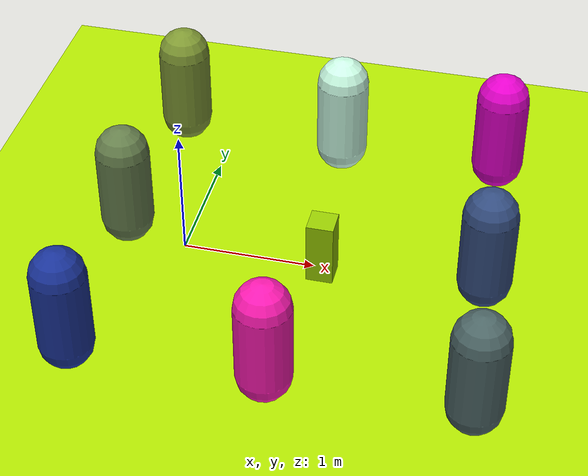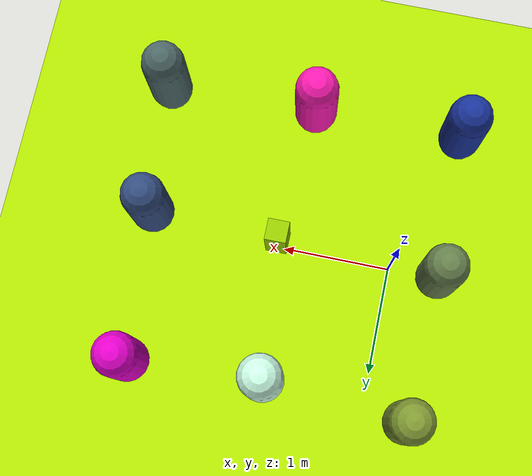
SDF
<sdf version="1.9">
 <world name="demo_01">
  <physics name="1ms" type="ignored">
   <max_step_size>0.001</max_step_size>
   <real_time_factor>1</real_time_factor>
   <real_time_update_rate>1000</real_time_update_rate>
  </physics>
  <plugin name="ignition::gazebo::systems::Physics" filename="ignition-gazebo-physics-system"/>
  <plugin name="ignition::gazebo::systems::UserCommands" filename="ignition-gazebo-user-commands-system"/>
  <plugin name="ignition::gazebo::systems::SceneBroadcaster" filename="ignition-gazebo-scene-broadcaster-system"/>
  <plugin name="ignition::gazebo::systems::Sensors" filename="ignition-gazebo-sensors-system">
   <render_engine>ogre2</render_engine>
  </plugin>
  <gravity>0 0 -9.8</gravity>
  <magnetic_field>6e-06 2.3e-05 -4.2e-05</magnetic_field>
  <atmosphere type="adiabatic"/>
  <scene><ambient>0.4 0.4 0.4 1</ambient><background>0.7 0.7 0.7 1</background><shadows>true</shadows></scene>
  <model name="ground_plane">
   <static>true</static>
   <link name="link">
    <collision name="collision">
     <geometry><plane><normal>0 0 1</normal><size>1 1</size></plane></geometry>
    </collision>
    <visual name="visual">
     <geometry><plane><normal>0 0 1</normal><size>100 100</size></plane></geometry>
     <material>
      <ambient>0.5 0.75 0 1</ambient>
      <diffuse>0.7 0.9 0 1</diffuse>
      <specular>0.2 0.2 0.2 1</specular>
      <emissive>0.1 0 0.1 1</emissive>
     </material>
    </visual>
    <inertial>
     <mass>1</mass>
     <inertia><ixx>1</ixx><ixy>0</ixy><ixz>0</ixz><iyy>1</iyy><iyz>0</iyz><izz>1</izz></inertia>
    </inertial>
   </link>
  </model>
  <model name="box">
   <pose>1.0752 -0.058597 0.249999 0 0 -0</pose>
   <link name="box_link">
    <inertial>
     <inertia><ixx>0.16666</ixx><ixy>0</ixy><ixz>0</ixz><iyy>0.16666</iyy><iyz>0</iyz><izz>0.16666</izz></inertia>
     <mass>1</mass>
    </inertial>
    <collision name="box_collision"><geometry><box><size>0.2 0.2 0.5</size></box></geometry></collision>
    <visual name="box_visual">
     <geometry><box><size>0.2 0.2 0.5</size></box></geometry>
     <material>
      <ambient>0.4 0.65 0 1</ambient>
      <diffuse>0.6 0.8 0 1</diffuse>
      <specular>0.1 0.1 0.1 1</specular>
      <emissive>0 0 0 1</emissive>
     </material>
    </visual>
   </link>
   <static>false</static>
  </model>
  <model name="capsule">
   <pose>0.9412 1.26518 0.5 0 -0 0</pose>
   <link name="capsule_link">
    <inertial>
     <inertia>
      <ixx>0.074153999999999998</ixx>
      <ixy>0</ixy>
      <ixz>0</ixz>
      <iyy>0.074153999999999998</iyy>
      <iyz>0</iyz>
      <izz>0.018769000000000001</izz>
     </inertia>
     <mass>1</mass>
    </inertial>
    <collision name="capsule_collision">
     <geometry>
      <capsule><radius>0.20000000000000001</radius><length>0.59999999999999998</length></capsule>
     </geometry>
    </collision>
    <visual name="capsule_visual">
     <geometry>
      <capsule><radius>0.20000000000000001</radius><length>0.59999999999999998</length></capsule>
     </geometry>
     <material>
      <ambient>0.6 0.85 0.9 1</ambient>
      <diffuse>0.8 1 0.9 1</diffuse>
      <specular>0.3 0.3 0.3 1</specular>
      <emissive>0.2 0.1 0.2 1</emissive>
     </material>
    </visual>
   </link>
   <static>false</static>
  </model>
  <model name="capsule_0">
   <pose>2.18239 1.32587 0.5 0 -0 0</pose>
   <link name="capsule_link">
    <inertial>
     <inertia>
      <ixx>0.074153999999999998</ixx>
      <ixy>0</ixy>
      <ixz>0</ixz>
      <iyy>0.074153999999999998</iyy>
      <iyz>0</iyz>
      <izz>0.018769000000000001</izz>
     </inertia>
     <mass>1</mass>
    </inertial>
    <collision name="capsule_collision">
     <geometry>
      <capsule><radius>0.20000000000000001</radius><length>0.59999999999999998</length></capsule>
     </geometry>
    </collision>
    <visual name="capsule_visual">
     <geometry>
      <capsule><radius>0.20000000000000001</radius><length>0.59999999999999998</length></capsule>
     </geometry>
     <material>
      <ambient>0.7 0.95 0.8 1</ambient>
      <diffuse>0.9 0 0.8 1</diffuse>
      <specular>0.4 0.4 0.4 1</specular>
      <emissive>0.3 0.2 0.3 1</emissive>
     </material>
    </visual>
   </link>
   <static>false</static>
  </model>
  <model name="capsule_1">
   <pose>0.963936 -1.344 0.5 0 -0 0</pose>
   <link name="capsule_link">
    <inertial>
     <inertia>
      <ixx>0.074153999999999998</ixx>
      <ixy>0</ixy>
      <ixz>0</ixz>
      <iyy>0.074153999999999998</iyy>
      <iyz>0</iyz>
      <izz>0.018769000000000001</izz>
     </inertia>
     <mass>1</mass>
    </inertial>
    <collision name="capsule_collision">
     <geometry>
      <capsule><radius>0.20000000000000001</radius><length>0.59999999999999998</length></capsule>
     </geometry>
    </collision>
    <visual name="capsule_visual">
     <geometry>
      <capsule><radius>0.20000000000000001</radius><length>0.59999999999999998</length></capsule>
     </geometry>
     <material>
      <ambient>0.8 0.05 0.7 1</ambient>
      <diffuse>1 0.1 0.7 1</diffuse>
      <specular>0.5 0.5 0.5 1</specular>
      <emissive>0.4 0.3 0.4 1</emissive>
     </material>
    </visual>
   </link>
   <static>false</static>
  </model>
  <model name="capsule_2">
   <pose>-0.433816 -1.3563 0.5 0 -0 0</pose>
   <link name="capsule_link">
    <inertial>
     <inertia>
      <ixx>0.074153999999999998</ixx>
      <ixy>0</ixy>
      <ixz>0</ixz>
      <iyy>0.074153999999999998</iyy>
      <iyz>0</iyz>
      <izz>0.018769000000000001</izz>
     </inertia>
     <mass>1</mass>
    </inertial>
    <collision name="capsule_collision">
     <geometry>
      <capsule><radius>0.20000000000000001</radius><length>0.59999999999999998</length></capsule>
     </geometry>
    </collision>
    <visual name="capsule_visual">
     <geometry>
      <capsule><radius>0.20000000000000001</radius><length>0.59999999999999998</length></capsule>
     </geometry>
     <material>
      <ambient>0.9 0.15 0.6 1</ambient>
      <diffuse>0.1 0.2 0.6 1</diffuse>
      <specular>0.6 0.6 0.6 1</specular>
      <emissive>0.5 0.4 0.5 1</emissive>
     </material>
    </visual>
   </link>
   <static>false</static>
  </model>
  <model name="capsule_3">
   <pose>2.27506 -0.075799 0.5 0 -0 0</pose>
   <link name="capsule_link">
    <inertial>
     <inertia>
      <ixx>0.074153999999999998</ixx>
      <ixy>0</ixy>
      <ixz>0</ixz>
      <iyy>0.074153999999999998</iyy>
      <iyz>0</iyz>
      <izz>0.018769000000000001</izz>
     </inertia>
     <mass>1</mass>
    </inertial>
    <collision name="capsule_collision">
     <geometry>
      <capsule><radius>0.20000000000000001</radius><length>0.59999999999999998</length></capsule>
     </geometry>
    </collision>
    <visual name="capsule_visual">
     <geometry>
      <capsule><radius>0.20000000000000001</radius><length>0.59999999999999998</length></capsule>
     </geometry>
     <material>
      <ambient>1 0.25 0.5 1</ambient>
      <diffuse>0.2 0.3 0.5 1</diffuse>
      <specular>0.7 0.7 0.7 1</specular>
      <emissive>0.6 0.5 0.6 1</emissive>
     </material>
    </visual>
   </link>
   <static>false</static>
  </model>
  <model name="capsule_4">
   <pose>2.38116 -1.30911 0.5 0 -0 0</pose>
   <link name="capsule_link">
    <inertial>
     <inertia>
      <ixx>0.074153999999999998</ixx>
      <ixy>0</ixy>
      <ixz>0</ixz>
      <iyy>0.074153999999999998</iyy>
      <iyz>0</iyz>
      <izz>0.018769000000000001</izz>
     </inertia>
     <mass>1</mass>
    </inertial>
    <collision name="capsule_collision">
     <geometry>
      <capsule><radius>0.20000000000000001</radius><length>0.59999999999999998</length></capsule>
     </geometry>
    </collision>
    <visual name="capsule_visual">
     <geometry>
      <capsule><radius>0.20000000000000001</radius><length>0.59999999999999998</length></capsule>
     </geometry>
     <material>
      <ambient>0.1 0.35 0.4 1</ambient>
      <diffuse>0.3 0.4 0.4 1</diffuse>
      <specular>0.8 0.8 0.8 1</specular>
      <emissive>0.5 0.6 0.5 1</emissive>
     </material>
    </visual>
   </link>
   <static>false</static>
  </model>
  <model name="capsule_5">
   <pose>-0.447953 0.020731 0.5 0 -0 0</pose>
   <link name="capsule_link">
    <inertial>
     <inertia>
      <ixx>0.074153999999999998</ixx>
      <ixy>0</ixy>
      <ixz>0</ixz>
      <iyy>0.074153999999999998</iyy>
      <iyz>0</iyz>
      <izz>0.018769000000000001</izz>
     </inertia>
     <mass>1</mass>
    </inertial>
    <collision name="capsule_collision">
     <geometry>
      <capsule><radius>0.20000000000000001</radius><length>0.59999999999999998</length></capsule>
     </geometry>
    </collision>
    <visual name="capsule_visual">
     <geometry>
      <capsule><radius>0.20000000000000001</radius><length>0.59999999999999998</length></capsule>
     </geometry>
     <material>
      <ambient>0.2 0.45 0.3 1</ambient>
      <diffuse>0.4 0.5 0.3 1</diffuse>
      <specular>0.9 0.9 0.9 1</specular>
      <emissive>0.5 0.7 0.5 1</emissive>
     </material>
    </visual>
   </link>
   <static>false</static>
  </model>
  <model name="capsule_6">
   <pose>-0.382949 1.37754 0.5 0 -0 0</pose>
   <link name="capsule_link">
    <inertial>
     <inertia>
      <ixx>0.074153999999999998</ixx>
      <ixy>0</ixy>
      <ixz>0</ixz>
      <iyy>0.074153999999999998</iyy>
      <iyz>0</iyz>
      <izz>0.018769000000000001</izz>
     </inertia>
     <mass>1</mass>
    </inertial>
    <collision name="capsule_collision">
     <geometry>
      <capsule><radius>0.20000000000000001</radius><length>0.59999999999999998</length></capsule>
     </geometry>
    </collision>
    <visual name="capsule_visual">
     <geometry>
      <capsule><radius>0.20000000000000001</radius><length>0.59999999999999998</length></capsule>
     </geometry>
     <material>
      <ambient>0.3 0.55 0.2 1</ambient>
      <diffuse>0.5 0.6 0.2 1</diffuse>
      <specular>1 1 1 1</specular>
      <emissive>0.5 0.8 0.5 1</emissive>
     </material>
    </visual>
   </link>
   <static>false</static>
  </model>
  <light name="sun" type="directional">
   <pose>0 0 10 0 -0 0</pose>
   <intensity>1</intensity>
   <direction>-0.5 0.1 -0.9</direction>
   <diffuse>0.8 0.8 0.8 1</diffuse>
   <specular>0.2 0.2 0.2 1</specular>
   <attenuation>
    <range>1000</range>
    <linear>0.01</linear>
    <constant>0.90000000000000002</constant>
    <quadratic>0.001</quadratic>
   </attenuation>
   <spot><inner_angle>0</inner_angle><outer_angle>0</outer_angle><falloff>0</falloff></spot>
  </light>
 </world>
</sdf>
